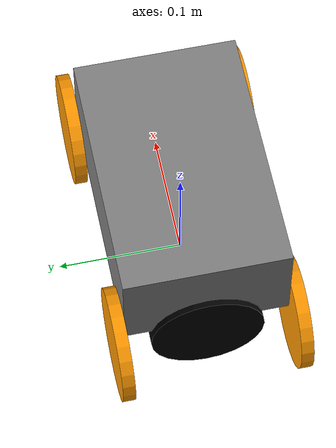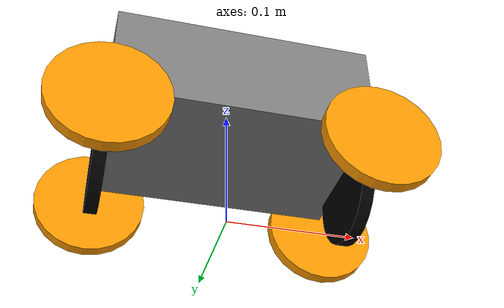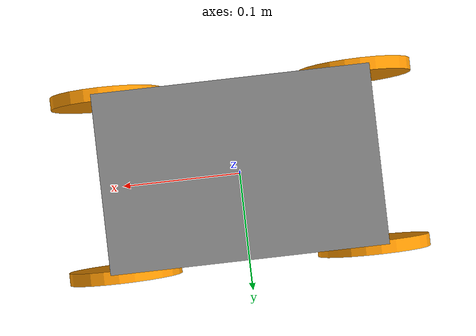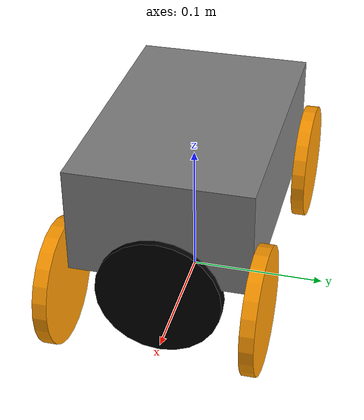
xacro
<?xml version="1.0"?>

<!-- add xmlns:macro="link" to use xacro extension -->
<robot name="robot" xmlns:xacro="http://www.ros.org/wiki/xacro">

    <!-- Include -->
    <xacro:include filename="inertials.xacro" />

    <!-- Define constant variables using xacro -->
    <xacro:property name="base_length" value="0.2" />
    <xacro:property name="base_width" value="0.13" />
    <xacro:property name="base_height" value="0.1" />
    <xacro:property name="wheel_radius" value="0.045" />
    <xacro:property name="wheel_length" value="0.01" />
    <xacro:property name="robot_namespace" value="/ackrobot"/>

    <material name="red">
        <color rgba="1 0 0 1"/>
    </material>

    <material name="orange">
        <color rgba="1 0.6 0 1" />
    </material>

    <material name="grey">
        <color rgba="0.5 0.5 0.5 1" />
    </material>

    <material name="invisible">
        <color rgba="0.0 0.0 0.0 0.0"/>
    </material>

    <link name="base_footprint" />

    <!-- Chassis -->
    <link name="chassis">
        <collision>
            <geometry>
                <box size="${base_length} ${base_width} ${base_height - (wheel_radius / 2)}" />
            </geometry>
            <origin xyz="0 0 ${base_height / 2.0}" rpy="0 0 0" />
        </collision>
        <visual>
            <geometry>
                <box size="${base_length} ${base_width} ${base_height - (wheel_radius / 2)}" />
            </geometry>
            <origin xyz="0 0 ${base_height / 2.0}" rpy="0 0 0" />
            <material name="grey" />
        </visual>
        <xacro:inertial_box mass="2.0" x="${base_length}" y="${base_width}" z="${base_height - (wheel_radius / 2)}">
            <origin xyz="0 0 ${base_height / 2.0}" rpy="0 0 0"/>
        </xacro:inertial_box>
    </link>

    <!-- rear Right Wheel -->
    <link name="rear_right_wheel_link">
        <collision>
            <geometry>
                <cylinder radius="${wheel_radius}" length="${wheel_length}" />
            </geometry>
            <origin xyz="0 0 0" rpy="${pi / 2.0} 0 0" />
        </collision>
        <visual>
            <geometry>
                <cylinder radius="${wheel_radius}" length="${wheel_length}" />
            </geometry>
            <origin xyz="0 0 0" rpy="${pi / 2.0} 0 0" />
            <material name="orange" />
        </visual>
        <xacro:inertial_cylinder mass="0.25" length="${wheel_length}" radius="${wheel_radius}">
            <origin xyz="0 0 0" rpy="${pi / 2.0} 0 0"/>
        </xacro:inertial_cylinder>
    </link>

    <!-- rear Left Wheel -->
    <link name="rear_left_wheel_link">
        <collision>
            <geometry>
                <cylinder radius="${wheel_radius}" length="${wheel_length}" />
            </geometry>
            <origin xyz="0 0 0" rpy="${pi / 2.0} 0 0" />
        </collision>
        <visual>
            <geometry>
                <cylinder radius="${wheel_radius}" length="${wheel_length}" />
            </geometry>
            <origin xyz="0 0 0" rpy="${pi / 2.0} 0 0" />
            <material name="orange" />
        </visual>
    </link>

    <!-- Virtual Rear Wheel -->
    <link name="virtual_rear_wheel">
        <visual>
        <origin xyz="0 0 0" rpy="${pi/2} 0 ${pi/2}"/>
        <geometry>
            <cylinder length="0.01" radius="${wheel_radius}"/>
        </geometry>
        <material name="invisible"/>
        </visual>
    </link>

    <!-- Front Right Wheel -->
    <link name="front_right_wheel_link">
        <collision>
            <geometry>
                <cylinder radius="${wheel_radius}" length="${wheel_length}" />
            </geometry>
            <origin xyz="0 0 0" rpy="${pi / 2.0} 0 0" />
        </collision>
        <visual>
            <geometry>
                <cylinder radius="${wheel_radius}" length="${wheel_length}" />
            </geometry>
            <origin xyz="0 0 0" rpy="${pi / 2.0} 0 0" />
            <material name="orange" />
        </visual>
        <xacro:inertial_cylinder mass="0.25" length="${wheel_length}" radius="${wheel_radius}">
            <origin xyz="0 0 0" rpy="${pi / 2.0} 0 0"/>
        </xacro:inertial_cylinder>
    </link>

    <!-- Front Left Wheel -->
    <link name="front_left_wheel_link">
        <collision>
            <geometry>
                <cylinder radius="${wheel_radius}" length="${wheel_length}" />
            </geometry>
            <origin xyz="0 0 0" rpy="${pi / 2.0} 0 0" />
        </collision>
        <visual>
            <geometry>
                <cylinder radius="${wheel_radius}" length="${wheel_length}" />
            </geometry>
            <origin xyz="0 0 0" rpy="${pi / 2.0} 0 0" />
            <material name="orange" />
        </visual>
        <xacro:inertial_cylinder mass="0.25" length="${wheel_length}" radius="${wheel_radius}">
            <origin xyz="0 0 0" rpy="${pi / 2.0} 0 0"/>
        </xacro:inertial_cylinder>
    </link>

    <!-- Virtual Front Wheel -->
    <link name="virtual_front_wheel">
        <visual>
            <origin xyz="0 0 0" rpy="${pi/2} 0 ${pi/2}"/>
            <geometry>
            <cylinder length="0.01" radius="${wheel_radius}"/>
            </geometry>
            <material name="invisible"/>
        </visual>
        <xacro:inertial_cylinder mass="0.0000001" length="0.01" radius="${wheel_radius}">
            <origin xyz="0 0 0" rpy="${pi / 2.0} 0 ${pi / 2.0}"/>
        </xacro:inertial_cylinder>
    </link>

    <!-- Joints -->
    <joint name="footprint_chassis_joint" type="fixed">
        <parent link="base_footprint" />
        <child link="chassis" />
        <origin xyz="0 0 ${wheel_radius}" rpy="0 0 0" />
        <axis xyz="0 0 0" />
    </joint>

    <joint name="virtual_front_wheel_joint" type="revolute">
      <parent link="chassis"/>
      <child link="virtual_front_wheel"/>
      <origin xyz="${base_length/2} 0 0" rpy="0 0 0"/>
      <axis xyz="0 0 1"/>
      <limit lower="-0.4" upper="0.4" effort="100.0" velocity="0.0"/>
      <dynamics damping="0.2"/>
        <gazebo>
            <disable_physics>true</disable_physics>
        </gazebo>
    </joint>

    <joint name="virtual_rear_wheel_joint" type="continuous">
      <parent link="chassis"/>
      <child link="virtual_rear_wheel"/>
      <origin xyz="-${base_length/2} 0 0" rpy="0 0 0"/>
      <axis xyz="0 1 0"/>
      <limit effort="100.0" velocity="100.0"/>
      <dynamics damping="0.2"/>
        <gazebo>
            <disable_physics>true</disable_physics>
        </gazebo>
    </joint>

    <joint name="base_rear_right_wheel_joint" type="continuous">
        <parent link="chassis" />
        <child link="rear_right_wheel_link" />
        <origin xyz="${-base_length / 2.0} ${-(base_width + wheel_length) / 2.0} 0" rpy="0 0 0" />
        <axis xyz="0 1 0" />
        <limit effort="100.0" velocity="100.0"/>
        <dynamics damping="0.2"/>
        <mimic joint="virtual_rear_wheel_joint" multiplier="1.0" offset="0.0"/>
    </joint>

    <joint name="base_rear_left_wheel_joint" type="continuous">
        <parent link="chassis" />
        <child link="rear_left_wheel_link" />
        <origin xyz="${-base_length / 2.0} ${(base_width + wheel_length) / 2.0} 0" rpy="0 0 0" />
        <axis xyz="0 1 0" />
        <limit effort="100.0" velocity="100.0"/>
        <dynamics damping="0.2"/>
        <mimic joint="virtual_rear_wheel_joint" multiplier="1.0" offset="0.0"/>
    </joint>

    <joint name="base_front_right_wheel_joint" type="continuous">
        <parent link="chassis" />
        <child link="front_right_wheel_link" />
        <origin xyz="${base_length/2} ${-(base_width + wheel_length) / 2.0} 0" rpy="0 0 0" />
        <axis xyz="0 0   1" />
        <limit lower="-0.4" upper="0.4" effort="100.0" velocity="0.0"/>
        <dynamics damping="0.2"/>
        <mimic joint="virtual_front_wheel_joint" multiplier="1.0" offset="0.0"/>
    </joint>

    <joint name="base_front_left_wheel_joint" type="continuous">
        <parent link="chassis" />
        <child link="front_left_wheel_link" />
        <origin xyz="${base_length/2} ${(base_width + wheel_length) / 2.0} 0" rpy="0 0 0" />
        <axis xyz="0 0 1" />
        <limit lower="-0.4" upper="0.4" effort="100.0" velocity="0.0"/>
        <dynamics damping="0.2"/>
        <mimic joint="virtual_front_wheel_joint" multiplier="1.0" offset="0.0"/>
    </joint>

</robot>
